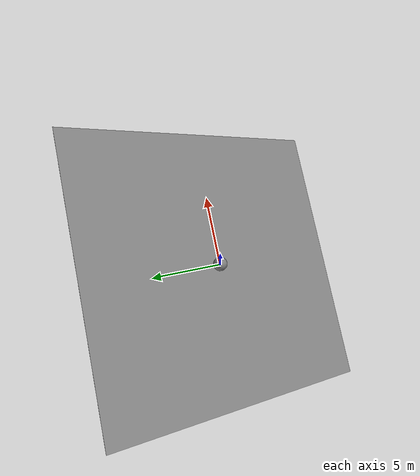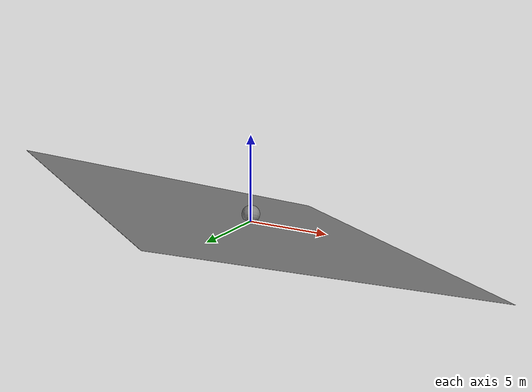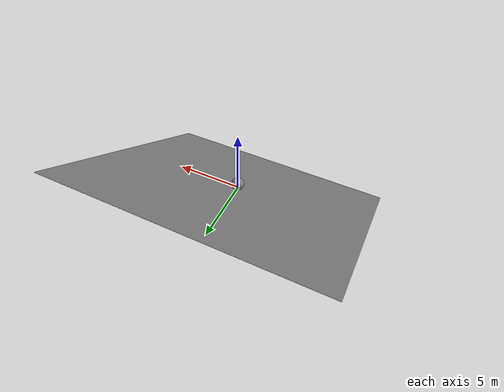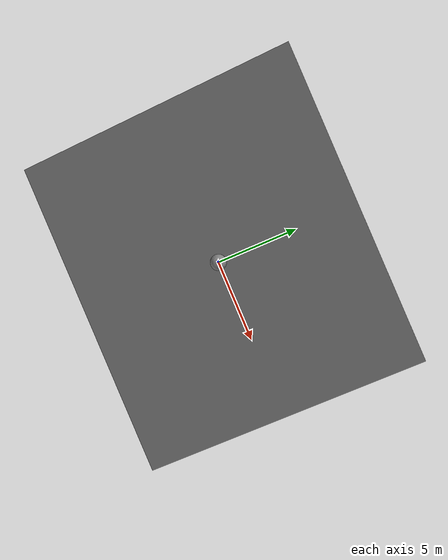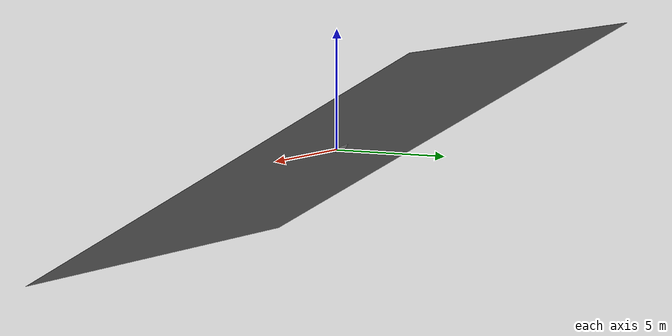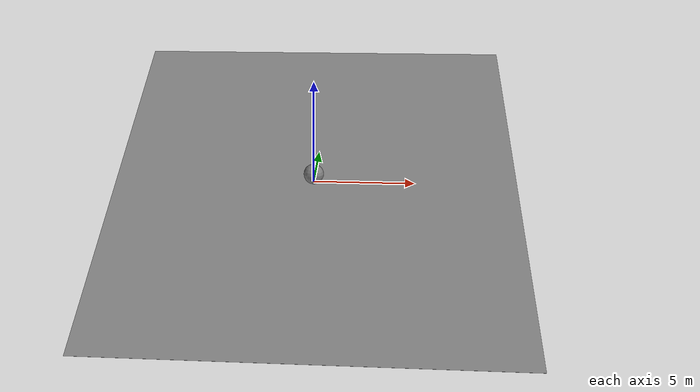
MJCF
<mujoco model="sphere_tilted_plane">
            <option gravity="0 0 0" timestep="0.001"/>
            <worldbody>
                <geom name="floor" type="plane" size="10 10 0.1" euler="30 0 0"/>
                <body name="ball" pos="0 0 0.4">
                    <joint type="free"/>
                    <geom type="sphere" size="0.5"/>
                </body>
            </worldbody>
        </mujoco>
